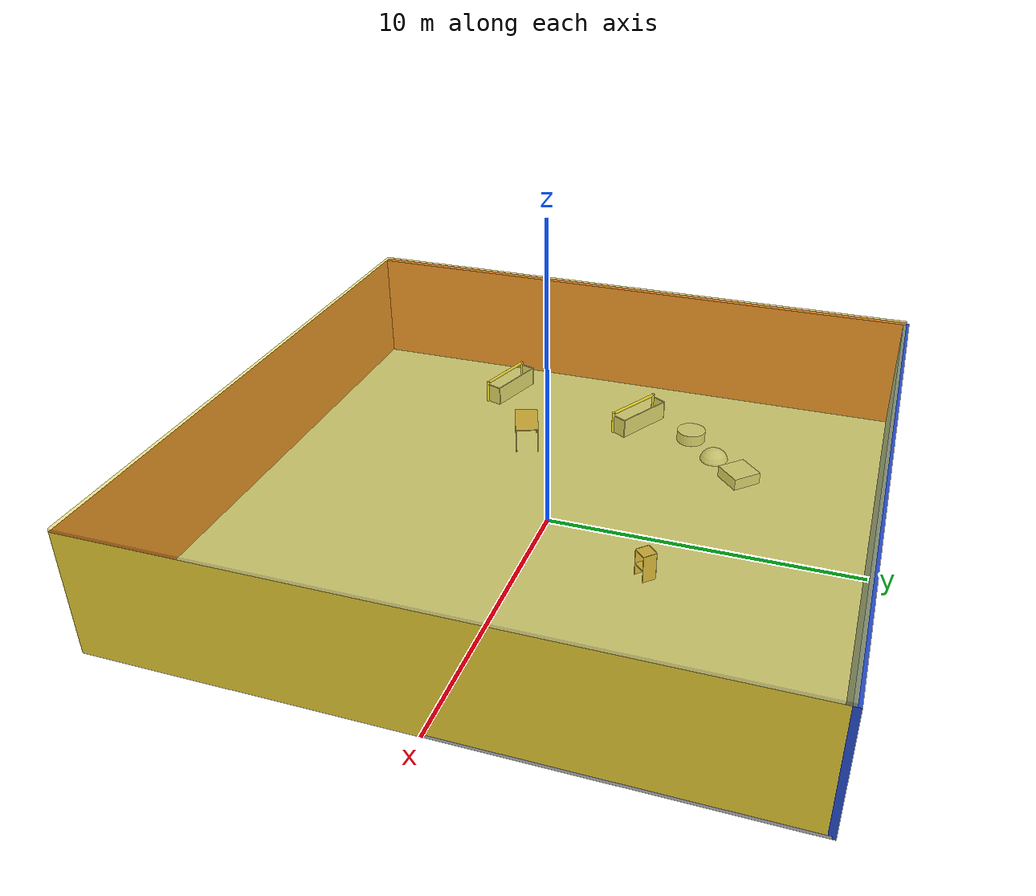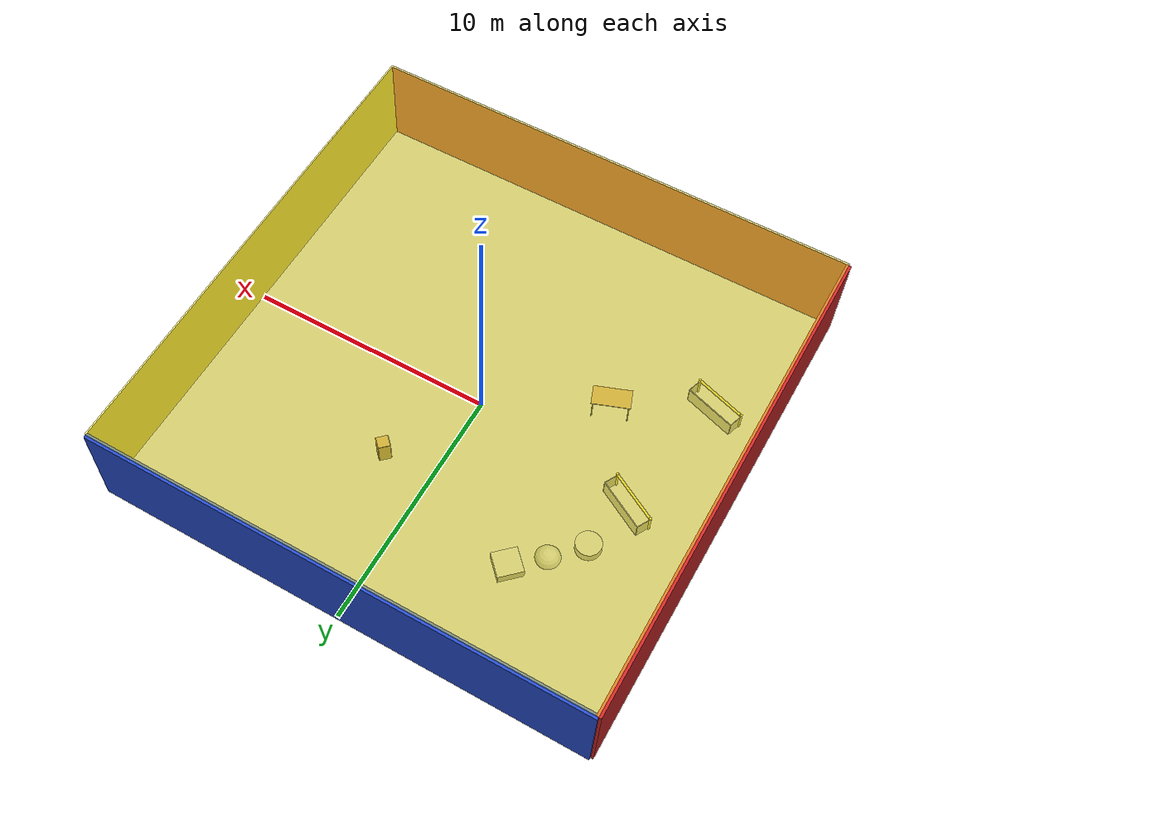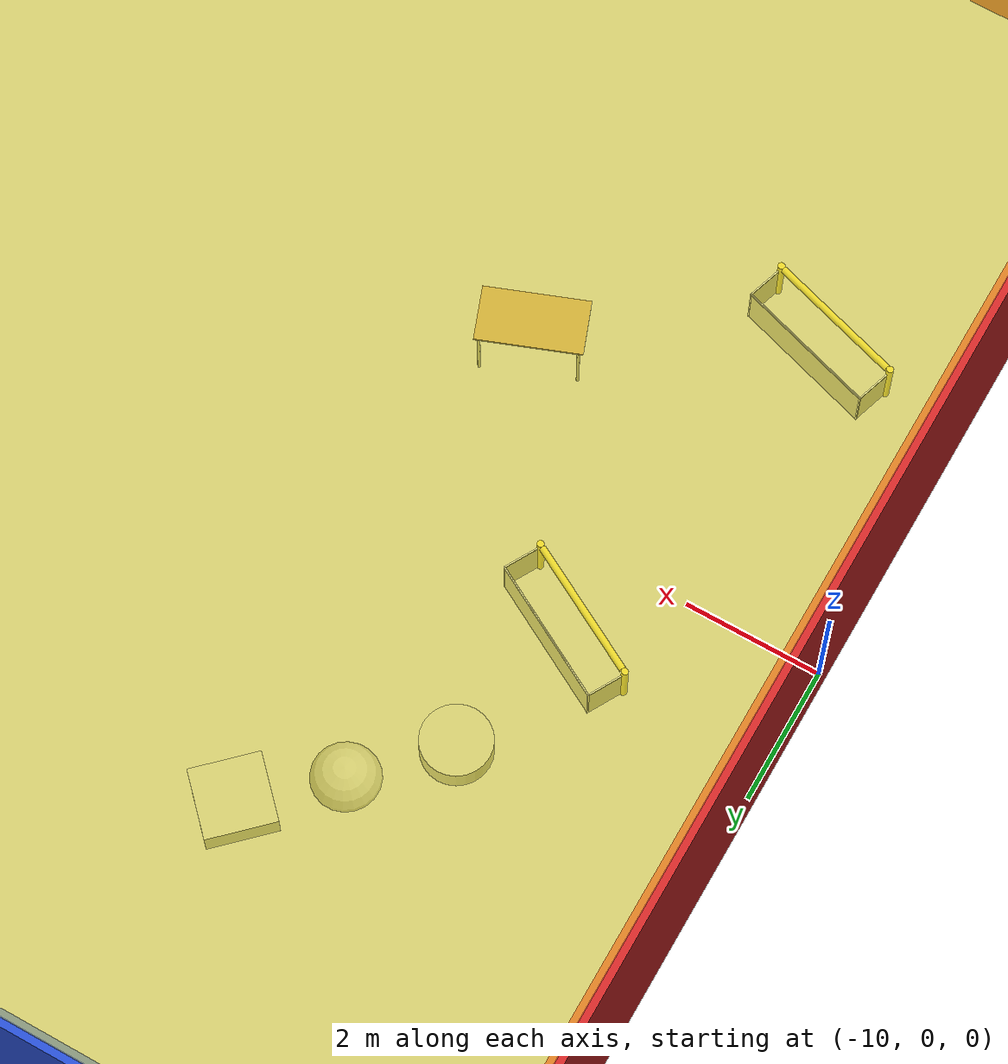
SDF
<sdf version="1.4">
 <world name="default">
  <physics type="ode">
   <max_step_size>0.001</max_step_size>
   <real_time_factor>1</real_time_factor>
   <real_time_update_rate>1000</real_time_update_rate>
   <gravity>0 0 -9.8</gravity>
  </physics>
  <scene><ambient>0.4 0.4 0.4 1</ambient><background>0.7 0.7 0.7 1</background><shadows>1</shadows></scene>
  <model name="Surrounding">
   <static>1</static>
   <link name="Ceiling">
    <collision name="Ceiling_Collision"><geometry><box><size>20 20 0.1</size></box></geometry></collision>
    <visual name="Ceiling_Visual">
     <geometry><box><size>20 20 0.1</size></box></geometry>
     <material>
      <script>
       <uri>file://media/materials/scripts/gazebo.material</uri>
       <name>Gazebo/YellowTransparent</name>
      </script>
     </material>
    </visual>
    <pose>0 0 4.05 0 0 0</pose>
   </link>
   <link name="Wall_South">
    <collision name="Wall_South_Collision">
     <geometry><box><size>20 0 4</size></box></geometry>
     <pose>0 0 2 0 -0 0</pose>
    </collision>
    <visual name="Wall_South_Visual">
     <pose>0 0 2 0 -0 0</pose>
     <geometry><box><size>20 0 4</size></box></geometry>
     <material>
      <script><uri>file://media/materials/scripts/gazebo.material</uri><name>Gazebo/RedBright</name></script>
     </material>
    </visual>
    <velocity_decay><linear>0</linear><angular>0</angular></velocity_decay>
    <pose>0 -10 0 0 -0 0</pose>
   </link>
   <link name="Wall_East">
    <collision name="Wall_21_Collision">
     <geometry><box><size>20 0 4</size></box></geometry>
     <pose>0 0 2 0 -0 0</pose>
    </collision>
    <visual name="Wall_21_Visual">
     <pose>0 0 2 0 -0 0</pose>
     <geometry><box><size>20 0 4</size></box></geometry>
     <material>
      <script><uri>file://media/materials/scripts/gazebo.material</uri><name>Gazebo/ZincYellow</name></script>
     </material>
    </visual>
    <velocity_decay><linear>0</linear><angular>0</angular></velocity_decay>
    <pose>10 0 0 0 -0 1.5708</pose>
   </link>
   <link name="Wall_North">
    <collision name="Wall_22_Collision">
     <geometry><box><size>20 0.2 4</size></box></geometry>
     <pose>0 0 2 0 -0 0</pose>
    </collision>
    <visual name="Wall_22_Visual">
     <pose>0 0 2 0 -0 0</pose>
     <geometry><box><size>20 0.2 4</size></box></geometry>
     <material>
      <script><uri>file://media/materials/scripts/gazebo.material</uri><name>Gazebo/BlueGlow</name></script>
     </material>
    </visual>
    <velocity_decay><linear>0</linear><angular>0</angular></velocity_decay>
    <pose>0 10 0 0 -0 0</pose>
   </link>
   <link name="Wall_West">
    <collision name="Wall_23_Collision">
     <geometry><box><size>20 0.2 4</size></box></geometry>
     <pose>0 0 2 0 -0 0</pose>
    </collision>
    <visual name="Wall_23_Visual">
     <pose>0 0 2 0 -0 0</pose>
     <geometry><box><size>20 0.2 4</size></box></geometry>
     <material>
      <script><uri>file://media/materials/scripts/gazebo.material</uri><name>Gazebo/Red</name></script>
     </material>
    </visual>
    <velocity_decay><linear>0</linear><angular>0</angular></velocity_decay>
    <pose>-10 0 0 0 0 -1.5708</pose>
   </link>
   <link name="Ground_link">
    <collision name="collision">
     <pose>0 0 .05 0 -0 0</pose>
     <geometry><box><size>20 20 0.1</size></box></geometry>
    </collision>
    <visual name="visual">
     <pose>0 0 .05 0 -0 0</pose>
     <geometry><box><size>20 20 0.1</size></box></geometry>
     <material>
      <script><uri>file://media/materials/scripts/gazebo.material</uri><name>Gazebo/JointAnchor</name></script>
     </material>
    </visual>
   </link>
   <static>1</static>
  </model>
  <spherical_coordinates>
   <surface_model>EARTH_WGS84</surface_model>
   <latitude_deg>0</latitude_deg>
   <longitude_deg>0</longitude_deg>
   <elevation>0</elevation>
   <heading_deg>0</heading_deg>
  </spherical_coordinates>
  <light name="lightball_0" type="diffuse">
   <diffuse>0.8 0.8 0.8 1</diffuse>
   <specular>0.2 0.2 0.2 1</specular>
   <attenuation>
    <range>100</range>
    <constant>0.7</constant>
    <linear>0.01</linear>
    <quadratic>0.001</quadratic>
   </attenuation>
   <direction>-0.5 0.1 -0.9</direction>
   <pose>2.20598259636 -5.9187238694 2.6955007101 0 0 0</pose>
  </light>
  <light name="lightball_1" type="diffuse">
   <diffuse>0.8 0.8 0.8 1</diffuse>
   <specular>0.2 0.2 0.2 1</specular>
   <attenuation>
    <range>100</range>
    <constant>0.7</constant>
    <linear>0.01</linear>
    <quadratic>0.001</quadratic>
   </attenuation>
   <direction>-0.5 0.1 -0.9</direction>
   <pose>-1.13224571019 -7.84143503525 1.96007138555 0 0 0</pose>
  </light>
  <light name="lightball_2" type="diffuse">
   <diffuse>0.8 0.8 0.8 1</diffuse>
   <specular>0.2 0.2 0.2 1</specular>
   <attenuation>
    <range>100</range>
    <constant>0.7</constant>
    <linear>0.01</linear>
    <quadratic>0.001</quadratic>
   </attenuation>
   <direction>-0.5 0.1 -0.9</direction>
   <pose>-6.34138570437 -7.39019199438 1.52378884201 0 0 0</pose>
  </light>
  <light name="lightball_3" type="diffuse">
   <diffuse>0.8 0.8 0.8 1</diffuse>
   <specular>0.2 0.2 0.2 1</specular>
   <attenuation>
    <range>100</range>
    <constant>0.7</constant>
    <linear>0.01</linear>
    <quadratic>0.001</quadratic>
   </attenuation>
   <direction>-0.5 0.1 -0.9</direction>
   <pose>0.775197518175 -3.11243520389 2.60553472427 0 0 0</pose>
  </light>
  <light name="lightball_4" type="diffuse">
   <diffuse>0.8 0.8 0.8 1</diffuse>
   <specular>0.2 0.2 0.2 1</specular>
   <attenuation>
    <range>100</range>
    <constant>0.7</constant>
    <linear>0.01</linear>
    <quadratic>0.001</quadratic>
   </attenuation>
   <direction>-0.5 0.1 -0.9</direction>
   <pose>6.65888404877 -7.16413254511 3.39629527163 0 0 0</pose>
  </light>
  <light name="lightball_5" type="diffuse">
   <diffuse>0.8 0.8 0.8 1</diffuse>
   <specular>0.2 0.2 0.2 1</specular>
   <attenuation>
    <range>100</range>
    <constant>0.7</constant>
    <linear>0.01</linear>
    <quadratic>0.001</quadratic>
   </attenuation>
   <direction>-0.5 0.1 -0.9</direction>
   <pose>7.76992343066 4.06191712539 1.01288472488 0 0 0</pose>
  </light>
  <light name="lightball_6" type="diffuse">
   <diffuse>0.8 0.8 0.8 1</diffuse>
   <specular>0.2 0.2 0.2 1</specular>
   <attenuation>
    <range>100</range>
    <constant>0.7</constant>
    <linear>0.01</linear>
    <quadratic>0.001</quadratic>
   </attenuation>
   <direction>-0.5 0.1 -0.9</direction>
   <pose>-2.03281524215 3.47567382975 1.30248761567 0 0 0</pose>
  </light>
  <light name="lightball_7" type="diffuse">
   <diffuse>0.8 0.8 0.8 1</diffuse>
   <specular>0.2 0.2 0.2 1</specular>
   <attenuation>
    <range>100</range>
    <constant>0.7</constant>
    <linear>0.01</linear>
    <quadratic>0.001</quadratic>
   </attenuation>
   <direction>-0.5 0.1 -0.9</direction>
   <pose>-3.76521954976 -4.71760112857 2.56453201634 0 0 0</pose>
  </light>
  <light name="lightball_8" type="diffuse">
   <diffuse>0.8 0.8 0.8 1</diffuse>
   <specular>0.2 0.2 0.2 1</specular>
   <attenuation>
    <range>100</range>
    <constant>0.7</constant>
    <linear>0.01</linear>
    <quadratic>0.001</quadratic>
   </attenuation>
   <direction>-0.5 0.1 -0.9</direction>
   <pose>-8.39710550352 -4.6601906978 1.36311846707 0 0 0</pose>
  </light>
  <light name="lightball_9" type="diffuse">
   <diffuse>0.8 0.8 0.8 1</diffuse>
   <specular>0.2 0.2 0.2 1</specular>
   <attenuation>
    <range>100</range>
    <constant>0.7</constant>
    <linear>0.01</linear>
    <quadratic>0.001</quadratic>
   </attenuation>
   <direction>-0.5 0.1 -0.9</direction>
   <pose>6.74736974389 7.92028921738 2.77622822945 0 0 0</pose>
  </light>
  <light name="lightball_10" type="diffuse">
   <diffuse>0.8 0.8 0.8 1</diffuse>
   <specular>0.2 0.2 0.2 1</specular>
   <attenuation>
    <range>100</range>
    <constant>0.7</constant>
    <linear>0.01</linear>
    <quadratic>0.001</quadratic>
   </attenuation>
   <direction>-0.5 0.1 -0.9</direction>
   <pose>-4.44047288704 3.95198206938 3.49604257368 0 0 0</pose>
  </light>
  <light name="lightball_11" type="diffuse">
   <diffuse>0.8 0.8 0.8 1</diffuse>
   <specular>0.2 0.2 0.2 1</specular>
   <attenuation>
    <range>100</range>
    <constant>0.7</constant>
    <linear>0.01</linear>
    <quadratic>0.001</quadratic>
   </attenuation>
   <direction>-0.5 0.1 -0.9</direction>
   <pose>-7.28705445743 1.07942807916 3.58985659976 0 0 0</pose>
  </light>
  <include>
   <uri>model://robocup_3Dsim_goal</uri>
   <pose>-7.88809248868 -4.32065416357 0 0 0 1.26021738288</pose>
  </include>
  <include>
   <uri>model://robocup_3Dsim_goal</uri>
   <pose>-6.95663836745 1.02681339851 0 0 0 1.06428240604</pose>
  </include>
  <include><uri>model://table</uri><pose>-4.37298041751 -2.21768822687 0 0 0 0.360967120677</pose></include>
  <include>
   <uri>model://textured_shapes</uri>
   <pose>-5.28476478234 4.36924426085 0 0 0 2.34269154723</pose>
  </include>
  <include><uri>model://cabinet</uri><pose>2.02917174188 3.71476864587 0 0 0 2.34670889438</pose></include>
 </world>
</sdf>

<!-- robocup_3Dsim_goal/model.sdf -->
<sdf version="1.5">
  <model name="robocup_3d_goal">
    <static>true</static>
    <link name="left_post">
      <pose>0 1.05 0.45 0 0 0</pose>
      <collision name="collision">
        <geometry>
          <cylinder>
            <radius>0.05</radius>
            <length>0.9</length>
          </cylinder>
        </geometry>
      </collision>
      <visual name="visual">
        <geometry>
          <cylinder>
            <radius>0.05</radius>
            <length>0.9</length>
          </cylinder>
        </geometry>
        <material>
          <script>
            <uri>file://media/materials/scripts/gazebo.material</uri>
            <name>Gazebo/ZincYellow</name>
          </script>
        </material>
      </visual>
    </link>
    <link name="left_support_horiz_lower">
      <pose>0.30 1.05 0.01 0 0 0</pose>
      <collision name="collision">
        <geometry>
          <box>
            <size>0.50 0.02 0.02</size>
          </box>
        </geometry>
      </collision>
      <visual name="visual">
        <geometry>
          <box>
            <size>0.50 0.02 0.02</size>
          </box>
        </geometry>
        <material>
          <script>
            <uri>file://media/materials/scripts/gazebo.material</uri>
            <name>Gazebo/White</name>
          </script>
        </material>
      </visual>
    </link>
    <link name="left_support_horiz_upper">
      <pose>0.30 1.05 0.79 0 0 0</pose>
      <collision name="collision">
        <geometry>
          <box>
            <size>0.50 0.02 0.02</size>
          </box>
        </geometry>
      </collision>
      <visual name="visual">
        <geometry>
          <box>
            <size>0.50 0.02 0.02</size>
          </box>
        </geometry>
        <material>
          <script>
            <uri>file://media/materials/scripts/gazebo.material</uri>
            <name>Gazebo/White</name>
          </script>
        </material>
      </visual>
    </link>
    <link name="left_support_vertical">
      <pose>0.56 1.05 0.4 0 1.5708 0</pose>
      <collision name="collision">
        <geometry>
          <box>
            <size>0.80 0.02 0.02</size>
          </box>
        </geometry>
      </collision>
      <visual name="visual">
        <geometry>
          <box>
            <size>0.80 0.02 0.02</size>
          </box>
        </geometry>
        <material>
          <script>
            <uri>file://media/materials/scripts/gazebo.material</uri>
            <name>Gazebo/White</name>
          </script>
        </material>
      </visual>
    </link>
    <link name="right_support_horiz_lower">
      <pose>0.30 -1.05 0.01 0 0 0</pose>
      <collision name="collision">
        <geometry>
          <box>
            <size>0.50 0.02 0.02</size>
          </box>
        </geometry>
      </collision>
      <visual name="visual">
        <geometry>
          <box>
            <size>0.50 0.02 0.02</size>
          </box>
        </geometry>
        <material>
          <script>
            <uri>file://media/materials/scripts/gazebo.material</uri>
            <name>Gazebo/White</name>
          </script>
        </material>
      </visual>
    </link>
    <link name="right_support_horiz_upper">
      <pose>0.30 -1.05 0.79 0 0 0</pose>
      <collision name="collision">
        <geometry>
          <box>
            <size>0.50 0.02 0.02</size>
          </box>
        </geometry>
      </collision>
      <visual name="visual">
        <geometry>
          <box>
            <size>0.50 0.02 0.02</size>
          </box>
        </geometry>
        <material>
          <script>
            <uri>file://media/materials/scripts/gazebo.material</uri>
            <name>Gazebo/White</name>
          </script>
        </material>
      </visual>
    </link>
    <link name="right_support_vertical">
      <pose>0.56 -1.05 0.4 0 1.5708 0</pose>
      <collision name="collision">
        <geometry>
          <box>
            <size>0.80 0.02 0.02</size>
          </box>
        </geometry>
      </collision>
      <visual name="visual">
        <geometry>
          <box>
            <size>0.80 0.02 0.02</size>
          </box>
        </geometry>
        <material>
          <script>
            <uri>file://media/materials/scripts/gazebo.material</uri>
            <name>Gazebo/White</name>
          </script>
        </material>
      </visual>
    </link>
    <link name="center_support_horiz_lower">
      <pose>0.56 0 0.01 0 1.5708 0</pose>
      <collision name="collision">
        <geometry>
          <box>
            <size>0.02 2.08 0.02</size>
          </box>
        </geometry>
      </collision>
      <visual name="visual">
        <geometry>
          <box>
            <size>0.02 2.08 0.02</size>
          </box>
        </geometry>
        <material>
          <script>
            <uri>file://media/materials/scripts/gazebo.material</uri>
            <name>Gazebo/White</name>
          </script>
        </material>
      </visual>
    </link>
    <link name="center_support_horiz_upper">
      <pose>0.56 0 0.79 0 1.5708 0</pose>
      <collision name="collision">
        <geometry>
          <box>
            <size>0.02 2.08 0.02</size>
          </box>
        </geometry>
      </collision>
      <visual name="visual">
        <geometry>
          <box>
            <size>0.02 2.08 0.02</size>
          </box>
        </geometry>
        <material>
          <script>
            <uri>file://media/materials/scripts/gazebo.material</uri>
            <name>Gazebo/White</name>
          </script>
        </material>
      </visual>
    </link>
    <link name="right_post">
      <pose>0 -1.05 0.45 0 0 0</pose>
      <collision name="collision">
        <geometry>
          <cylinder>
            <radius>0.05</radius>
            <length>0.9</length>
          </cylinder>
        </geometry>
      </collision>
      <visual name="visual">
        <geometry>
          <cylinder>
            <radius>0.05</radius>
            <length>0.9</length>
          </cylinder>
        </geometry>
        <material>
          <script>
            <uri>file://media/materials/scripts/gazebo.material</uri>
            <name>Gazebo/ZincYellow</name>
          </script>
        </material>
      </visual>
    </link>
    <link name="crossbar">
      <pose>0 0 0.85 1.57 1.57 0</pose>
      <collision name="collision">
        <geometry>
          <cylinder>
            <radius>0.05</radius>
            <length>2.0</length>
          </cylinder>
        </geometry>
      </collision>
      <visual name="visual">
        <geometry>
          <cylinder>
            <radius>0.05</radius>
            <length>2.0</length>
          </cylinder>
        </geometry>
        <material>
          <script>
            <uri>file://media/materials/scripts/gazebo.material</uri>
            <name>Gazebo/ZincYellow</name>
          </script>
        </material>
      </visual>
    </link>
    <link name="center_net">
      <pose>0.56 0 0.40 0 0 0</pose>
      <collision name="collision">
        <geometry>
          <box>
            <size>0.01 2.1 0.80</size>
          </box>
        </geometry>
      </collision>
      <visual name="visual">
        <geometry>
          <box>
            <size>0.01 2.1 0.80</size>
          </box>
        </geometry>
        <material>
          <script>
            <uri>model://../model_source/models/robocup09_spl_field/materials/scripts/</uri>
            <uri>model://../model_source/models/robocup09_spl_field/materials/textures/</uri>
            <name>RoboCup/Net</name>
          </script>
        </material>
      </visual>
    </link>
    <link name="left_net">
      <pose>0.30 1.05 0.40 0 0 0</pose>
      <collision name="collision">
        <geometry>
          <box>
            <size>0.50 0.01 0.76</size>
          </box>
        </geometry>
      </collision>
      <visual name="visual">
        <geometry>
          <box>
            <size>0.50 0.01 0.76</size>
          </box>
        </geometry>
        <material>
          <script>
            <uri>model://../model_source/models/robocup09_spl_field/materials/scripts/</uri>
            <uri>model://../model_source/models/robocup09_spl_field/materials/textures/</uri>
            <name>RoboCup/Net</name>
          </script>
        </material>
      </visual>
    </link>
    <link name="right_net">
      <pose>0.30 -1.05 0.40 0 0 0</pose>
      <collision name="collision">
        <geometry>
          <box>
            <size>0.50 0.01 0.76</size>
          </box>
        </geometry>
      </collision>
      <visual name="visual">
        <geometry>
          <box>
            <size>0.50 0.01 0.76</size>
          </box>
        </geometry>
        <material>
          <script>
            <uri>model://../model_source/models/robocup09_spl_field/materials/scripts/</uri>
            <uri>model://../model_source/models/robocup09_spl_field/materials/textures/</uri>
            <name>RoboCup/Net</name>
          </script>
        </material>
      </visual>
    </link>
  </model>
</sdf>

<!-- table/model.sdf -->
<sdf version="1.5">
  <model name="table">
    <static>true</static>
    <link name="link">
      <collision name="surface">
        <pose>0 0 1.0 0 0 0</pose>
        <geometry>
          <box>
            <size>1.5 0.8 0.03</size>
          </box>
        </geometry>
        <surface>
          <friction>
            <ode>
              <mu>0.6</mu>
              <mu2>0.6</mu2>
            </ode>
          </friction>
        </surface>
      </collision>
      <visual name="visual1">
        <pose>0 0 1.0 0 0 0</pose>
        <geometry>
          <box>
            <size>1.5 0.8 0.03</size>
          </box>
        </geometry>
        <material>
          <script>
            <uri>model://media/materials/scripts/gazebo.material</uri>
            <name>Gazebo/Wood</name>
          </script>
        </material>
      </visual>
      <collision name="front_left_leg">
        <pose>0.68 0.38 0.5 0 0 0</pose>
        <geometry>
          <cylinder>
            <radius>0.02</radius>
            <length>1.0</length>
          </cylinder>
        </geometry>
      </collision>
      <visual name="front_left_leg">
        <pose>0.68 0.38 0.5 0 0 0</pose>
        <geometry>
          <cylinder>
            <radius>0.02</radius>
            <length>1.0</length>
          </cylinder>
        </geometry>
        <material>
          <script>
            <uri>model://media/materials/scripts/gazebo.material</uri>
            <name>Gazebo/Grey</name>
          </script>
        </material>
      </visual>
      <collision name="front_right_leg">
        <pose>0.68 -0.38 0.5 0 0 0</pose>
        <geometry>
          <cylinder>
            <radius>0.02</radius>
            <length>1.0</length>
          </cylinder>
        </geometry>
      </collision>
      <visual name="front_right_leg">
        <pose>0.68 -0.38 0.5 0 0 0</pose>
        <geometry>
          <cylinder>
            <radius>0.02</radius>
            <length>1.0</length>
          </cylinder>
        </geometry>
        <material>
          <script>
            <uri>model://media/materials/scripts/gazebo.material</uri>
            <name>Gazebo/Grey</name>
          </script>
        </material>
      </visual>
      <collision name="back_right_leg">
        <pose>-0.68 -0.38 0.5 0 0 0</pose>
        <geometry>
          <cylinder>
            <radius>0.02</radius>
            <length>1.0</length>
          </cylinder>
        </geometry>
      </collision>
      <visual name="back_right_leg">
        <pose>-0.68 -0.38 0.5 0 0 0</pose>
        <geometry>
          <cylinder>
            <radius>0.02</radius>
            <length>1.0</length>
          </cylinder>
        </geometry>
        <material>
          <script>
            <uri>model://media/materials/scripts/gazebo.material</uri>
            <name>Gazebo/Grey</name>
          </script>
        </material>
      </visual>
      <collision name="back_left_leg">
        <pose>-0.68 0.38 0.5 0 0 0</pose>
        <geometry>
          <cylinder>
            <radius>0.02</radius>
            <length>1.0</length>
          </cylinder>
        </geometry>
      </collision>
      <visual name="back_left_leg">
        <pose>-0.68 0.38 0.5 0 0 0</pose>
        <geometry>
          <cylinder>
            <radius>0.02</radius>
            <length>1.0</length>
          </cylinder>
        </geometry>
        <material>
          <script>
            <uri>model://media/materials/scripts/gazebo.material</uri>
            <name>Gazebo/Grey</name>
          </script>
        </material>
      </visual>
    </link>
  </model>
</sdf>

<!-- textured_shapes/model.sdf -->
<sdf version="1.6">
  <model name="textured_shapes">
    <pose>0 0 0.5 0 0 0</pose>
    <link name="box">
      <pose>0 -1.5 0 0 0 0</pose>
      <collision name="collision">
        <geometry>
          <box>
            <size>1 1 1</size>
          </box>
        </geometry>
      </collision>
      <visual name="visual">
        <geometry>
          <box>
            <size>1 1 1</size>
          </box>
        </geometry>
        <material>
          <script>
            <uri>model://../model_source/models/textured_shapes/materials/scripts</uri>
            <uri>model://../model_source/models/textured_shapes/materials/textures</uri>
            <name>TexturedShape/Squares</name>
          </script>
        </material>
      </visual>
    </link>
    <link name="sphere">
      <collision name="collision">
        <geometry>
          <sphere>
            <radius>0.5</radius>
          </sphere>
        </geometry>
      </collision>
      <visual name="visual">
        <geometry>
          <sphere>
            <radius>0.5</radius>
          </sphere>
        </geometry>
        <material>
          <script>
            <uri>model://../model_source/models/textured_shapes/materials/scripts</uri>
            <uri>model://../model_source/models/textured_shapes/materials/textures</uri>
            <name>TexturedShape/Squares</name>
          </script>
        </material>
      </visual>
    </link>
    <link name="cylinder">
      <pose>0 1.5 0 0 0 0</pose>
      <collision name="collision">
        <geometry>
          <cylinder>
            <radius>0.5</radius>
            <length>1</length>
          </cylinder>
        </geometry>
      </collision>
      <visual name="visual">
        <geometry>
          <cylinder>
            <radius>0.5</radius>
            <length>1</length>
          </cylinder>
        </geometry>
        <material>
          <script>
            <uri>model://../model_source/models/textured_shapes/materials/scripts</uri>
            <uri>model://../model_source/models/textured_shapes/materials/textures</uri>
            <name>TexturedShape/Squares</name>
          </script>
        </material>
      </visual>
    </link>
  </model>
</sdf>

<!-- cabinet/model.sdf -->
<sdf version="1.5">
  <model name="cabinet">
    <static>true</static>
    <link name="cabinet_bottom_plate">
      <inertial>
        <pose>0 0 -1 0 0 0</pose>
        <inertia>
          <ixx>2.050000</ixx>
          <ixy>0</ixy>
          <ixz>0</ixz>
          <iyy>2.050000</iyy>
          <iyz>0</iyz>
          <izz>2.050000</izz>
        </inertia>
        <mass>25.000000</mass>
      </inertial>
      <collision name="cabinet_bottom_plate_geom">
        <pose>0 0 0.010000 0 0 0</pose>
        <geometry>
          <box>
            <size>0.450000 0.450000 0.020000</size>
          </box>
        </geometry>
      </collision>
      <visual name="cabinet_bottom_plate_geom_visual">
        <pose>0 0 0.010000 0 0 0</pose>
        <geometry>
          <box>
            <size>0.450000 0.450000 0.020000</size>
          </box>
        </geometry>
        <material>
          <script>
            <uri>model://media/materials/scripts/gazebo.material</uri>
            <name>Gazebo/Wood</name>
          </script>
        </material>
      </visual>
      <collision name="cabinet_bottom_plate_geom_cabinet_back_plate">
        <pose>0.235000 0 0.510000 0 0 0</pose>
        <geometry>
          <box>
            <size>0.020000 0.450000 1.020000</size>
          </box>
        </geometry>
      </collision>
      <visual name="cabinet_bottom_plate_geom_cabinet_back_plate_visual">
        <pose>0.235000 0 0.510000 0 0 0</pose>
        <geometry>
          <box>
            <size>0.020000 0.450000 1.020000</size>
          </box>
        </geometry>
        <material>
          <script>
            <uri>model://media/materials/scripts/gazebo.material</uri>
            <name>Gazebo/Wood</name>
          </script>
        </material>
      </visual>
      <collision name="cabinet_bottom_plate_geom_cabinet_left_plate">
        <pose>0 0.235000 0.510000 0 0 0</pose>
        <geometry>
          <box>
            <size>0.450000 0.020000 1.020000</size>
          </box>
        </geometry>
      </collision>
      <visual name="cabinet_bottom_plate_geom_cabinet_left_plate_visual">
        <pose>0 0.235000 0.510000 0 0 0</pose>
        <geometry>
          <box>
            <size>0.450000 0.020000 1.020000</size>
          </box>
        </geometry>
        <material>
          <script>
            <uri>model://media/materials/scripts/gazebo.material</uri>
            <name>Gazebo/Wood</name>
          </script>
        </material>
      </visual>
      <collision name="cabinet_bottom_plate_geom_cabinet_middle_plate">
        <pose>0 0 0.510000 0 0 0</pose>
        <geometry>
          <box>
            <size>0.450000 0.450000 0.020000</size>
          </box>
        </geometry>
      </collision>
      <visual name="cabinet_bottom_plate_geom_cabinet_middle_plate_visual">
        <pose>0 0 0.510000 0 0 0</pose>
        <geometry>
          <box>
            <size>0.450000 0.450000 0.020000</size>
          </box>
        </geometry>
        <material>
          <script>
            <uri>model://media/materials/scripts/gazebo.material</uri>
            <name>Gazebo/Wood</name>
          </script>
        </material>
      </visual>
      <collision name="cabinet_bottom_plate_geom_cabinet_right_plate">
        <pose>0 -0.235000 0.510000 0 0 0</pose>
        <geometry>
          <box>
            <size>0.450000 0.020000 1.020000</size>
          </box>
        </geometry>
      </collision>
      <visual name="cabinet_bottom_plate_geom_cabinet_right_plate_visual">
        <pose>0 -0.235000 0.510000 0 0 0</pose>
        <geometry>
          <box>
            <size>0.450000 0.020000 1.020000</size>
          </box>
        </geometry>
        <material>
          <script>
            <uri>model://media/materials/scripts/gazebo.material</uri>
            <name>Gazebo/Wood</name>
          </script>
        </material>
      </visual>
      <collision name="cabinet_bottom_plate_geom_cabinet_top_plate">
        <pose>0 0 1.010000 0 0 0</pose>
        <geometry>
          <box>
            <size>0.450000 0.450000 0.020000</size>
          </box>
        </geometry>
      </collision>
      <visual name="cabinet_bottom_plate_geom_cabinet_top_plate_visual">
        <pose>0 0 1.010000 0 0 0</pose>
        <geometry>
          <box>
            <size>0.450000 0.450000 0.020000</size>
          </box>
        </geometry>
        <material>
          <script>
            <uri>model://media/materials/scripts/gazebo.material</uri>
            <name>Gazebo/Wood</name>
          </script>
        </material>
      </visual>
    </link>
  </model>
</sdf>
